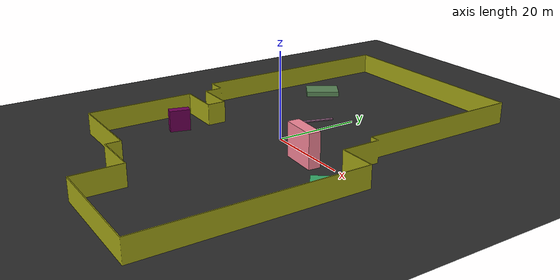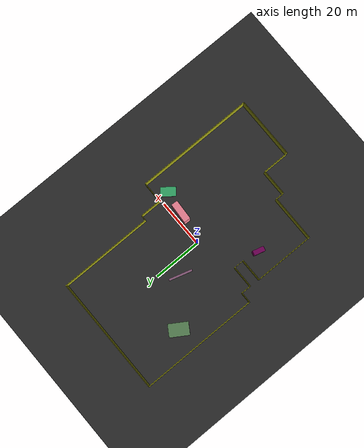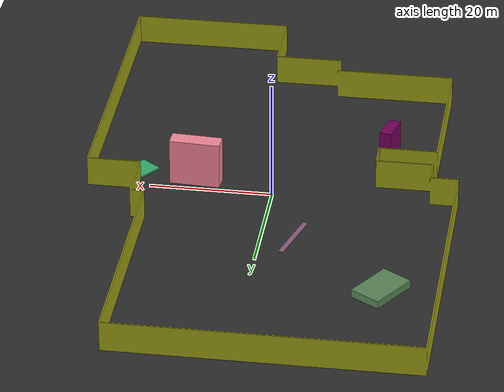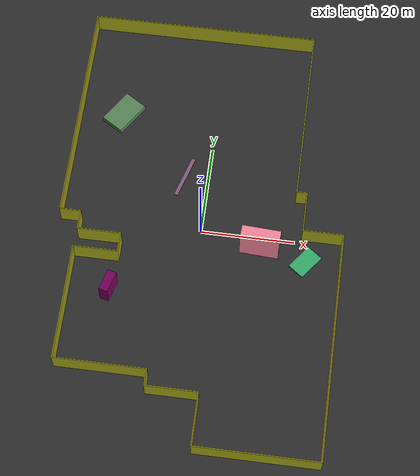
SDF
<?xml version="1.0" ?>
<sdf version="1.6">
  <world name="default">
    <atmosphere type="adiabatic"/>
    <wind>
      <linear_velocity>0 0 0</linear_velocity>
    </wind>
    <physics name="default_physics" default="1" type="ode">
      <max_step_size>0.001</max_step_size>
      <real_time_factor>1.0</real_time_factor>
      <real_time_update_rate>1000.0</real_time_update_rate>
      <max_contacts>20</max_contacts>
      <ode>
        <solver>
          <min_step_size>0.0001</min_step_size>
          <iters>50</iters>
          <sor>1.3</sor>
          <type>quick</type>
          <precon_iters>0</precon_iters>
          <use_dynamic_moi_rescaling>0</use_dynamic_moi_rescaling>
          <friction_model>pyramid_model</friction_model>
        </solver>
        <constraints>
          <cfm>0.0</cfm>
          <erp>0.2</erp>
          <contact_surface_layer>0.001</contact_surface_layer>
          <contact_max_correcting_vel>100.0</contact_max_correcting_vel>
        </constraints>
      </ode>
    </physics>
    <gravity>0 0 -9.8</gravity>
    <model name="ground_plane">
      <pose frame="">0 0 0 0 -0 0</pose>
      <static>1</static>
      <self_collide>0</self_collide>
      <allow_auto_disable>1</allow_auto_disable>
      <link name="link">
        <kinematic>0</kinematic>
        <gravity>1</gravity>
        <self_collide>0</self_collide>
        <collision name="collision">
          <geometry>
            <plane>
              <size>100 100</size>
              <normal>0 0 1</normal>
            </plane>
          </geometry>
          <pose frame="">0 0 0 0 -0 0</pose>
          <max_contacts>20</max_contacts>
          <surface>
            <friction>
              <ode>
                <mu>100.0</mu>
                <mu2>50.0</mu2>
                <fdir1>0 0 0</fdir1>
                <slip1>0.0</slip1>
                <slip2>0.0</slip2>
              </ode>
            </friction>
            <contact>
              <collide_bitmask>65535</collide_bitmask>
            </contact>
          </surface>
        </collision>
        <visual name="visual">
          <geometry>
            <plane>
              <size>100 100</size>
              <normal>0 0 1</normal>
            </plane>
          </geometry>
          <material>
            <ambient>0.175 0.175 0.175 1</ambient>
            <diffuse>0.175 0.175 0.175 1.0</diffuse>
          </material>
          <pose frame="">0 0 0 0 -0 0</pose>
          <cast_shadows>0</cast_shadows>
          <transparency>0.0</transparency>
        </visual>
        <pose frame="">0 0 0 0 -0 0</pose>
      </link>
    </model>
    <model name="box">
      <pose frame="">-5.22593 12.7194 0.109916 0 0 -0.288038</pose>
      <static>1</static>
      <self_collide>0</self_collide>
      <allow_auto_disable>0</allow_auto_disable>
      <link name="link">
        <kinematic>0</kinematic>
        <gravity>1</gravity>
        <self_collide>0</self_collide>
        <collision name="collision">
          <geometry>
            <box>
              <size>0.83824 9.69685 0.219832</size>
            </box>
          </geometry>
          <pose frame="">0 0 0 0 -0 0</pose>
          <max_contacts>20</max_contacts>
        </collision>
        <visual name="visual">
          <geometry>
            <box>
              <size>0.83824 9.69685 0.219832</size>
            </box>
          </geometry>
          <material>
            <ambient>0.537255 0.356863 0.482353 1</ambient>
            <diffuse>0.5372549019607843 0.3568627450980392 0.4823529411764706 1</diffuse>
          </material>
          <pose frame="">0 0 0 0 -0 0</pose>
          <cast_shadows>1</cast_shadows>
          <transparency>0.0</transparency>
        </visual>
        <pose frame="">0 0 0 0 -0 0</pose>
      </link>
    </model>
    <model name="box_1">
      <pose frame="">22.7782 -4.30285 0.131324 0 -0 0.922791</pose>
      <static>1</static>
      <self_collide>0</self_collide>
      <allow_auto_disable>0</allow_auto_disable>
      <link name="link">
        <kinematic>0</kinematic>
        <gravity>1</gravity>
        <self_collide>0</self_collide>
        <collision name="collision">
          <geometry>
            <box>
              <size>6.14847 3.8251 0.262648</size>
            </box>
          </geometry>
          <pose frame="">0 0 0 0 -0 0</pose>
          <max_contacts>20</max_contacts>
        </collision>
        <visual name="visual">
          <geometry>
            <box>
              <size>6.14847 3.8251 0.262648</size>
            </box>
          </geometry>
          <material>
            <ambient>0.207843 0.678431 0.419608 1</ambient>
            <diffuse>0.20784313725490197 0.6784313725490196 0.4196078431372549 1</diffuse>
          </material>
          <pose frame="">0 0 0 0 -0 0</pose>
          <cast_shadows>1</cast_shadows>
          <transparency>0.0</transparency>
        </visual>
        <pose frame="">0 0 0 0 -0 0</pose>
      </link>
    </model>
    <model name="box_2">
      <pose frame="">-20.7965 26.5965 0.637701 0 -0 2.5782</pose>
      <static>1</static>
      <self_collide>0</self_collide>
      <allow_auto_disable>0</allow_auto_disable>
      <link name="link">
        <kinematic>0</kinematic>
        <gravity>1</gravity>
        <self_collide>0</self_collide>
        <collision name="collision">
          <geometry>
            <box>
              <size>5.29104 8.12436 1.2754</size>
            </box>
          </geometry>
          <pose frame="">0 0 0 0 -0 0</pose>
          <max_contacts>20</max_contacts>
        </collision>
        <visual name="visual">
          <geometry>
            <box>
              <size>5.29104 8.12436 1.2754</size>
            </box>
          </geometry>
          <material>
            <ambient>0.34902 0.521569 0.337255 1</ambient>
            <diffuse>0.34901960784313724 0.5215686274509804 0.33725490196078434 1</diffuse>
          </material>
          <pose frame="">0 0 0 0 -0 0</pose>
          <cast_shadows>1</cast_shadows>
          <transparency>0.0</transparency>
        </visual>
        <pose frame="">0 0 0 0 -0 0</pose>
      </link>
    </model>
    <model name="box_3">
      <pose frame="">-17.4393 -15.9634 2.47552 0 -0 2.87685</pose>
      <static>1</static>
      <self_collide>0</self_collide>
      <allow_auto_disable>0</allow_auto_disable>
      <link name="link">
        <kinematic>0</kinematic>
        <gravity>1</gravity>
        <self_collide>0</self_collide>
        <collision name="collision">
          <geometry>
            <box>
              <size>1.95634 4.65028 4.95104</size>
            </box>
          </geometry>
          <pose frame="">0 0 0 0 -0 0</pose>
          <max_contacts>20</max_contacts>
        </collision>
        <visual name="visual">
          <geometry>
            <box>
              <size>1.95634 4.65028 4.95104</size>
            </box>
          </geometry>
          <material>
            <ambient>0.447059 0 0.345098 1</ambient>
            <diffuse>0.4470588235294118 0.0 0.34509803921568627 1</diffuse>
          </material>
          <pose frame="">0 0 0 0 -0 0</pose>
          <cast_shadows>1</cast_shadows>
          <transparency>0.0</transparency>
        </visual>
        <pose frame="">0 0 0 0 -0 0</pose>
      </link>
    </model>
    <model name="box_4">
      <pose frame="">12.8329 -2.6189 3.89654 0 -0 1.51246</pose>
      <static>1</static>
      <self_collide>0</self_collide>
      <allow_auto_disable>0</allow_auto_disable>
      <link name="link">
        <kinematic>0</kinematic>
        <gravity>1</gravity>
        <self_collide>0</self_collide>
        <collision name="collision">
          <geometry>
            <box>
              <size>2.73536 8.278 7.79307</size>
            </box>
          </geometry>
          <pose frame="">0 0 0 0 -0 0</pose>
          <max_contacts>20</max_contacts>
        </collision>
        <visual name="visual">
          <geometry>
            <box>
              <size>2.73536 8.278 7.79307</size>
            </box>
          </geometry>
          <material>
            <ambient>0.968627 0.529412 0.603922 1</ambient>
            <diffuse>0.9686274509803922 0.5294117647058824 0.6039215686274509 1</diffuse>
          </material>
          <pose frame="">0 0 0 0 -0 0</pose>
          <cast_shadows>1</cast_shadows>
          <transparency>0.0</transparency>
        </visual>
        <pose frame="">0 0 0 0 -0 0</pose>
      </link>
    </model>
    <include>
      <uri>model://test_2_walls</uri>
      <pose frame="">0 0 2.5 0 -0 0</pose>
      <name>test_2_walls</name>
      <static>1</static>
    </include>
    <include>
      <uri>model://ground_plane</uri>
    </include>
    <include>
      <uri>model://sun</uri>
    </include>
  </world>
</sdf>

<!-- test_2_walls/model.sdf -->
<sdf version="1.6">
  <model name="test_2_walls">
    <pose frame="">0 0 2.5 0 -0 0</pose>
    <static>1</static>
    <self_collide>0</self_collide>
    <allow_auto_disable>0</allow_auto_disable>
    <link name="mesh">
      <kinematic>0</kinematic>
      <gravity>1</gravity>
      <self_collide>0</self_collide>
      <collision name="collision">
        <geometry>
          <mesh>
            <uri>file:///home/agusmazzeo/Documents/UTN/Proyecto/Frontier-Exploration-with-a-prior/Notebooks/files/models/test_2_walls/meshes/OAHHNRRCJG.stl</uri>
            <scale>1 1 1</scale>
          </mesh>
        </geometry>
        <pose frame="">0.885677 -0.448982 -2.5 0 -0 0</pose>
        <max_contacts>20</max_contacts>
      </collision>
      <visual name="visual">
        <geometry>
          <mesh>
            <uri>file:///home/agusmazzeo/Documents/UTN/Proyecto/Frontier-Exploration-with-a-prior/Notebooks/files/models/test_2_walls/meshes/ibyCSFprrt.stl</uri>
            <scale>1 1 1</scale>
          </mesh>
        </geometry>
        <material>
          <ambient>0.635294 0.643137 0.0823529 1</ambient>
          <diffuse>0.6352941176470588 0.6431372549019608 0.08235294117647059 1</diffuse>
        </material>
        <pose frame="">0.885677 -0.448982 -2.5 0 -0 0</pose>
        <cast_shadows>1</cast_shadows>
        <transparency>0.0</transparency>
      </visual>
      <pose frame="">0 0 0 0 -0 0</pose>
    </link>
  </model>
</sdf>
